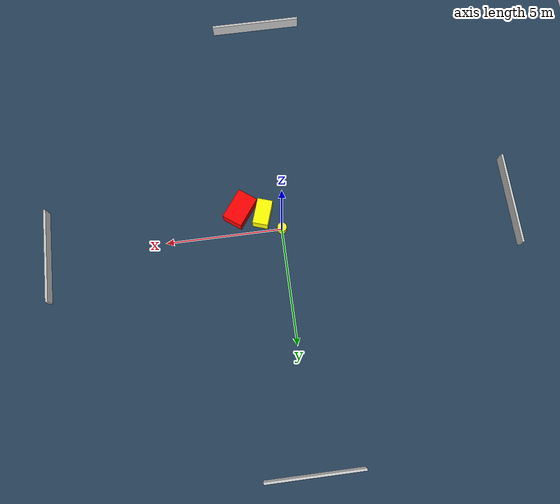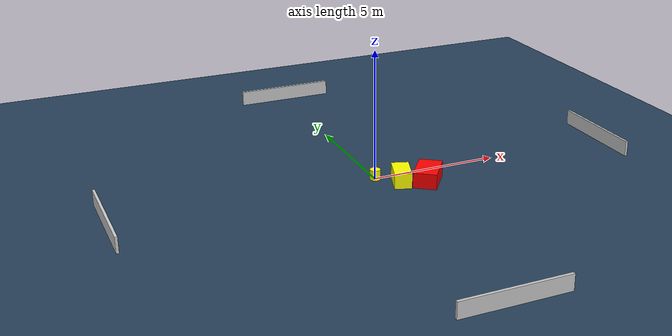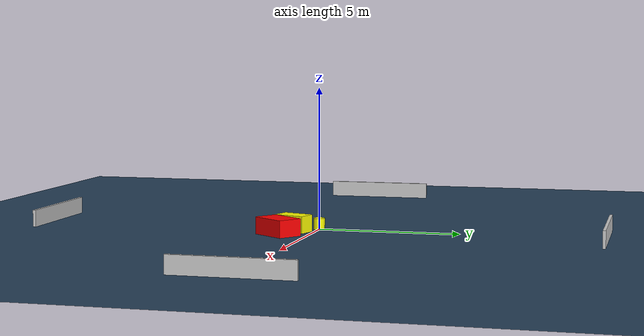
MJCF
<?xml version="1.0" ?>
<mujoco model="generated_environment">
  <option timestep="0.01" integrator="RK4" cone="elliptic"/>
  <default>
    <geom density="1"/>
  </default>
  <asset>
    <texture builtin="gradient" height="3072" name="skybox" rgb1="0.3 0.5 0.7" rgb2="0 0 0" type="skybox" width="512"/>
    <texture builtin="checker" height="300" name="groundplane" rgb1="0.2 0.3 0.4" rgb2="0.1 0.2 0.3" type="2d" width="300"/>
    <material name="groundplane" reflectance="0.2" texrepeat="5 5" texture="groundplane"/>
  </asset>
  <worldbody>
    <light dir="0 0 -1" directional="true" pos="0 0 1.5"/>
    <geom condim="3" friction="0.5 0.005 0.001" material="groundplane" name="floor" pos="0 0 0" size="0 0 0.05" type="plane"/>
    <body name="walls">
      <geom name="wall_1" condim="4" pos="-10.0 0.0 0.3" rgba="0.800000011920929 0.800000011920929 0.800000011920929 1.0" size="0.05 2.0 0.3" type="box"/>
      <geom name="wall_2" condim="4" pos="10.0 0.0 0.3" rgba="0.800000011920929 0.800000011920929 0.800000011920929 1.0" size="0.05 2.0 0.3" type="box"/>
      <geom name="wall_3" condim="4" pos="0.0 -10.0 0.3" rgba="0.800000011920929 0.800000011920929 0.800000011920929 1.0" size="2.0 0.05 0.3" type="box"/>
      <geom name="wall_4" condim="4" pos="0.0 10.0 0.3" rgba="0.800000011920929 0.800000011920929 0.800000011920929 1.0" size="2.0 0.05 0.3" type="box"/>
    </body>
    <body name="robot">
      <joint name="joint_x" type="slide" pos="0 0 0" axis="1 0 0"/>
      <joint name="joint_y" type="slide" pos="0 0 0" axis="0 1 0"/>
      <geom name="robot" type="cylinder" pos="0.0 0.0 0.2" size="0.2 0.2 0.0" mass="5.0" friction="1.0 0.005 0.0001" condim="4" rgba="1.0 1.0 0.0 1.0"/>
    </body>
    <body name="obstacle_1_movable">
      <geom name="obstacle_1_movable" condim="4" pos="0.7473313887404027 -0.7241527445316577 0.3" euler="0 0 251.7006240297335" friction="0.0 0.005 0.001" rgba="1.0 1.0 0.0 1.0" size="0.5563163896586953 0.3297701754200602 0.3" type="box" mass="0.1"/>
      <joint type="free"/>
    </body>
    <body name="obstacle_2_static">
      <geom name="obstacle_2_static" condim="4" pos="1.690634601933829 -1.0265894445338095 0.3" euler="0 0 143.56267369996047" friction="0.0 0.005 0.001" rgba="1.0 0.0 0.0 1.0" size="0.445511761308818 0.6881561188836155 0.3" type="box"/>
    </body>
  </worldbody>
  <actuator>
    <motor name="actuator_x" joint="joint_x" gear="1" ctrlrange="-1 1"/>
    <motor name="actuator_y" joint="joint_y" gear="1" ctrlrange="-1 1"/>
  </actuator>
</mujoco>
